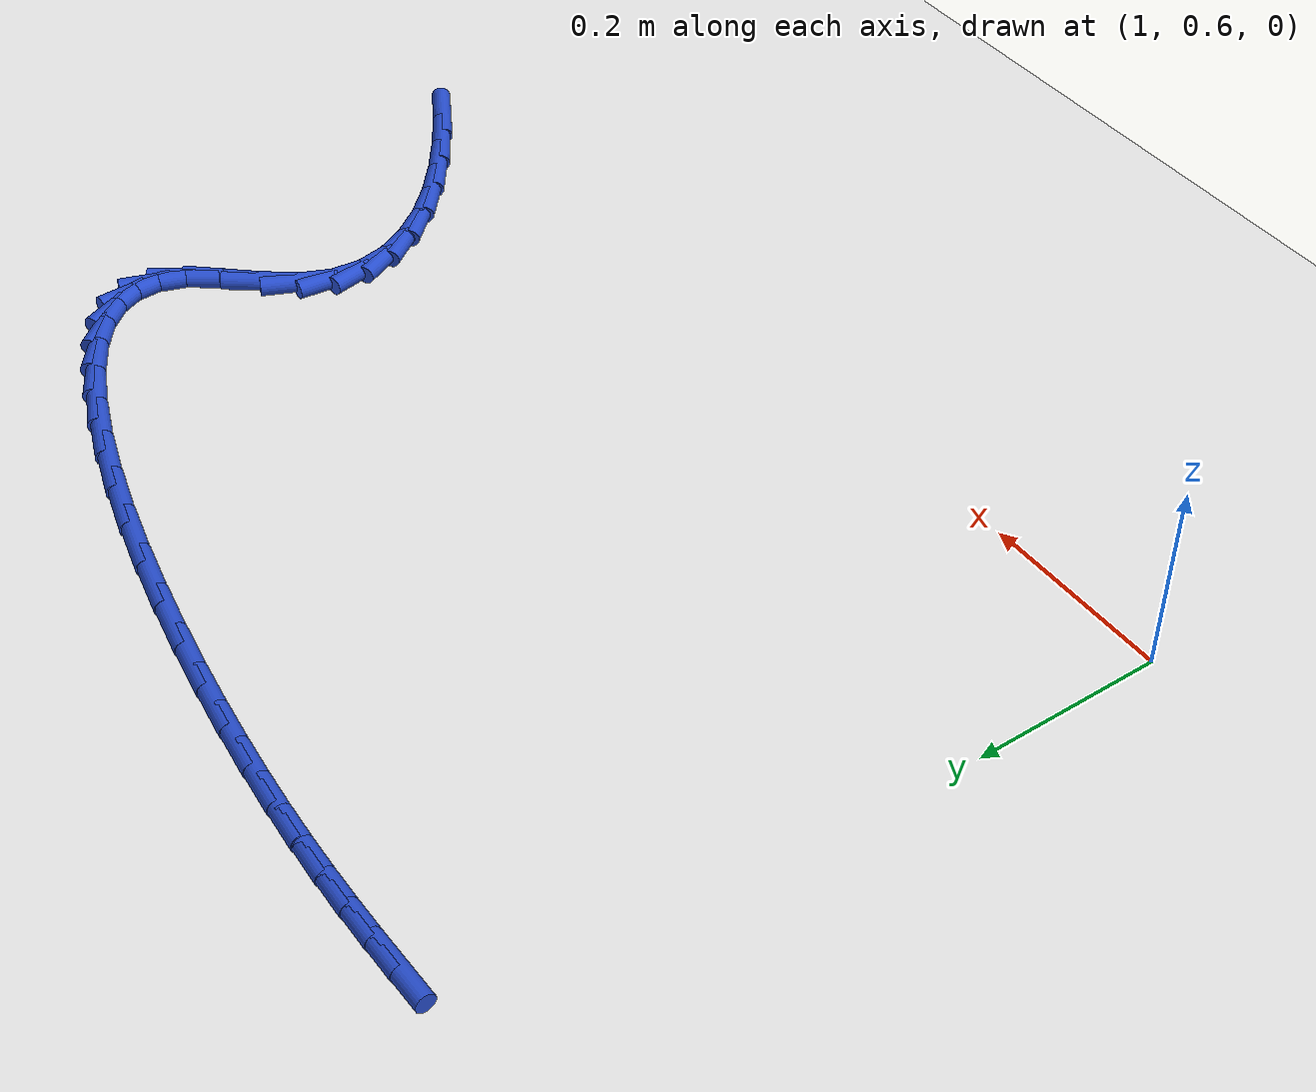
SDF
<sdf version="1.6">
 <world name="default">
  <model name="ground_plane">
   <static>1</static>
   <link name="link">
    <collision name="collision">
     <geometry><plane><normal>0 0 1</normal><size>100 100</size></plane></geometry>
     <surface><friction><ode><mu>100</mu><mu2>50</mu2></ode></friction></surface>
    </collision>
    <visual name="visual">
     <cast_shadows>0</cast_shadows>
     <geometry><plane><normal>0 0 1</normal><size>100 100</size></plane></geometry>
     <material>
      <script><uri>file://media/materials/scripts/gazebo.material</uri><name>Gazebo/WhiteGlow</name></script>
     </material>
    </visual>
   </link>
  </model>
  <model name="line">
   <link name="link_54">
    <pose>1.088029812200985 1.3249546010694535 0.01 0 1.57 0.009431579210391387</pose>
    <collision name="collision">
     <geometry><cylinder><radius>0.01</radius><length>0.08</length></cylinder></geometry>
    </collision>
    <visual name="visual">
     <material>
      <script><name>Gazebo/Blue</name><uri>file://media/materials/scripts/gazebo.material</uri></script>
     </material>
     <geometry><cylinder><radius>0.01</radius><length>0.08</length></cylinder></geometry>
    </visual>
   </link>
   <link name="link_55">
    <pose>1.1241681047701428 1.3252954523451805 0.01 0 1.57 -0.00444309195493434</pose>
    <collision name="collision">
     <geometry><cylinder><radius>0.01</radius><length>0.08</length></cylinder></geometry>
    </collision>
    <visual name="visual">
     <material>
      <script><name>Gazebo/Blue</name><uri>file://media/materials/scripts/gazebo.material</uri></script>
     </material>
     <geometry><cylinder><radius>0.01</radius><length>0.08</length></cylinder></geometry>
    </visual>
   </link>
   <link name="link_56">
    <pose>1.1609926185099289 1.3251318365677875 0.01 0 1.57 -0.02135259291994002</pose>
    <collision name="collision">
     <geometry><cylinder><radius>0.01</radius><length>0.08</length></cylinder></geometry>
    </collision>
    <visual name="visual">
     <material>
      <script><name>Gazebo/Blue</name><uri>file://media/materials/scripts/gazebo.material</uri></script>
     </material>
     <geometry><cylinder><radius>0.01</radius><length>0.08</length></cylinder></geometry>
    </visual>
   </link>
   <link name="link_57">
    <pose>1.1989363323020936 1.324321516738992 0.01 0 1.57 -0.04046971935433926</pose>
    <collision name="collision">
     <geometry><cylinder><radius>0.01</radius><length>0.08</length></cylinder></geometry>
    </collision>
    <visual name="visual">
     <material>
      <script><name>Gazebo/Blue</name><uri>file://media/materials/scripts/gazebo.material</uri></script>
     </material>
     <geometry><cylinder><radius>0.01</radius><length>0.08</length></cylinder></geometry>
    </visual>
   </link>
   <link name="link_58">
    <pose>1.2384322250283883 1.3227222558605107 0.01 0 1.57 -0.06092678608826884</pose>
    <collision name="collision">
     <geometry><cylinder><radius>0.01</radius><length>0.08</length></cylinder></geometry>
    </collision>
    <visual name="visual">
     <material>
      <script><name>Gazebo/Blue</name><uri>file://media/materials/scripts/gazebo.material</uri></script>
     </material>
     <geometry><cylinder><radius>0.01</radius><length>0.08</length></cylinder></geometry>
    </visual>
   </link>
   <link name="link_59">
    <pose>1.2799132755705658 1.3201918169340614 0.01 0 1.57 -0.08191018645160461</pose>
    <collision name="collision">
     <geometry><cylinder><radius>0.01</radius><length>0.08</length></cylinder></geometry>
    </collision>
    <visual name="visual">
     <material>
      <script><name>Gazebo/Blue</name><uri>file://media/materials/scripts/gazebo.material</uri></script>
     </material>
     <geometry><cylinder><radius>0.01</radius><length>0.08</length></cylinder></geometry>
    </visual>
   </link>
   <link name="link_60">
    <pose>1.3238124628103765 1.3165879629613617 0.01 0 1.57 -0.10272747933632816</pose>
    <collision name="collision">
     <geometry><cylinder><radius>0.01</radius><length>0.08</length></cylinder></geometry>
    </collision>
    <visual name="visual">
     <material>
      <script><name>Gazebo/Blue</name><uri>file://media/materials/scripts/gazebo.material</uri></script>
     </material>
     <geometry><cylinder><radius>0.01</radius><length>0.08</length></cylinder></geometry>
    </visual>
   </link>
   <link name="link_61">
    <pose>1.3705627656295716 1.3117684569441284 0.01 0 1.57 -0.12289369342704996</pose>
    <collision name="collision">
     <geometry><cylinder><radius>0.01</radius><length>0.08</length></cylinder></geometry>
    </collision>
    <visual name="visual">
     <material>
      <script><name>Gazebo/Blue</name><uri>file://media/materials/scripts/gazebo.material</uri></script>
     </material>
     <geometry><cylinder><radius>0.01</radius><length>0.08</length></cylinder></geometry>
    </visual>
   </link>
   <link name="link_62">
    <pose>1.4204952045015808 1.305600995031575 0.01 0 1.57 -0.14285486224246896</pose>
    <collision name="collision">
     <geometry><cylinder><radius>0.01</radius><length>0.08</length></cylinder></geometry>
    </collision>
    <visual name="visual">
     <material>
      <script><name>Gazebo/Blue</name><uri>file://media/materials/scripts/gazebo.material</uri></script>
     </material>
     <geometry><cylinder><radius>0.01</radius><length>0.08</length></cylinder></geometry>
    </visual>
   </link>
   <link name="link_63">
    <pose>1.473087429432464 1.2980364117315932 0.01 0 1.57 -0.1636919185847594</pose>
    <collision name="collision">
     <geometry><cylinder><radius>0.01</radius><length>0.08</length></cylinder></geometry>
    </collision>
    <visual name="visual">
     <material>
      <script><name>Gazebo/Blue</name><uri>file://media/materials/scripts/gazebo.material</uri></script>
     </material>
     <geometry><cylinder><radius>0.01</radius><length>0.08</length></cylinder></geometry>
    </visual>
   </link>
   <link name="link_64">
    <pose>1.5273917203938736 1.289066982600064 0.01 0 1.57 -0.18634617327038</pose>
    <collision name="collision">
     <geometry><cylinder><radius>0.01</radius><length>0.08</length></cylinder></geometry>
    </collision>
    <visual name="visual">
     <material>
      <script><name>Gazebo/Blue</name><uri>file://media/materials/scripts/gazebo.material</uri></script>
     </material>
     <geometry><cylinder><radius>0.01</radius><length>0.08</length></cylinder></geometry>
    </visual>
   </link>
   <link name="link_65">
    <pose>1.5824572396208434 1.2786852869337584 0.01 0 1.57 -0.21182949814616803</pose>
    <collision name="collision">
     <geometry><cylinder><radius>0.01</radius><length>0.08</length></cylinder></geometry>
    </collision>
    <visual name="visual">
     <material>
      <script><name>Gazebo/Blue</name><uri>file://media/materials/scripts/gazebo.material</uri></script>
     </material>
     <geometry><cylinder><radius>0.01</radius><length>0.08</length></cylinder></geometry>
    </visual>
   </link>
   <link name="link_66">
    <pose>1.6373331493484085 1.2668839040294477 0.01 0 1.57 -0.24137830240991728</pose>
    <collision name="collision">
     <geometry><cylinder><radius>0.01</radius><length>0.08</length></cylinder></geometry>
    </collision>
    <visual name="visual">
     <material>
      <script><name>Gazebo/Blue</name><uri>file://media/materials/scripts/gazebo.material</uri></script>
     </material>
     <geometry><cylinder><radius>0.01</radius><length>0.08</length></cylinder></geometry>
    </visual>
   </link>
   <link name="link_67">
    <pose>1.691068611811601 1.2536554131839028 0.01 0 1.57 -0.27664367276878027</pose>
    <collision name="collision">
     <geometry><cylinder><radius>0.01</radius><length>0.08</length></cylinder></geometry>
    </collision>
    <visual name="visual">
     <material>
      <script><name>Gazebo/Blue</name><uri>file://media/materials/scripts/gazebo.material</uri></script>
     </material>
     <geometry><cylinder><radius>0.01</radius><length>0.08</length></cylinder></geometry>
    </visual>
   </link>
   <link name="link_68">
    <pose>1.7427127892454557 1.2389923936938954 0.01 0 1.57 -0.3199770640843167</pose>
    <collision name="collision">
     <geometry><cylinder><radius>0.01</radius><length>0.08</length></cylinder></geometry>
    </collision>
    <visual name="visual">
     <material>
      <script><name>Gazebo/Blue</name><uri>file://media/materials/scripts/gazebo.material</uri></script>
     </material>
     <geometry><cylinder><radius>0.01</radius><length>0.08</length></cylinder></geometry>
    </visual>
   </link>
   <link name="link_69">
    <pose>1.7913148438850073 1.222887424856196 0.01 0 1.57 -0.3749032187285134</pose>
    <collision name="collision">
     <geometry><cylinder><radius>0.01</radius><length>0.08</length></cylinder></geometry>
    </collision>
    <visual name="visual">
     <material>
      <script><name>Gazebo/Blue</name><uri>file://media/materials/scripts/gazebo.material</uri></script>
     </material>
     <geometry><cylinder><radius>0.01</radius><length>0.08</length></cylinder></geometry>
    </visual>
   </link>
   <link name="link_70">
    <pose>1.8359239379652887 1.2053330859675768 0.01 0 1.57 -0.44694174297669936</pose>
    <collision name="collision">
     <geometry><cylinder><radius>0.01</radius><length>0.08</length></cylinder></geometry>
    </collision>
    <visual name="visual">
     <material>
      <script><name>Gazebo/Blue</name><uri>file://media/materials/scripts/gazebo.material</uri></script>
     </material>
     <geometry><cylinder><radius>0.01</radius><length>0.08</length></cylinder></geometry>
    </visual>
   </link>
   <link name="link_71">
    <pose>1.875589233721334 1.1863219563248077 0.01 0 1.57 -0.5450430978455487</pose>
    <collision name="collision">
     <geometry><cylinder><radius>0.01</radius><length>0.08</length></cylinder></geometry>
    </collision>
    <visual name="visual">
     <material>
      <script><name>Gazebo/Blue</name><uri>file://media/materials/scripts/gazebo.material</uri></script>
     </material>
     <geometry><cylinder><radius>0.01</radius><length>0.08</length></cylinder></geometry>
    </visual>
   </link>
   <link name="link_72">
    <pose>1.9093598933881775 1.165846615224661 0.01 0 1.57 -0.6838863555935412</pose>
    <collision name="collision">
     <geometry><cylinder><radius>0.01</radius><length>0.08</length></cylinder></geometry>
    </collision>
    <visual name="visual">
     <material>
      <script><name>Gazebo/Blue</name><uri>file://media/materials/scripts/gazebo.material</uri></script>
     </material>
     <geometry><cylinder><radius>0.01</radius><length>0.08</length></cylinder></geometry>
    </visual>
   </link>
   <link name="link_73">
    <pose>1.936285079200853 1.1438996419639065 0.01 0 1.57 -0.8860360437319956</pose>
    <collision name="collision">
     <geometry><cylinder><radius>0.01</radius><length>0.08</length></cylinder></geometry>
    </collision>
    <visual name="visual">
     <material>
      <script><name>Gazebo/Blue</name><uri>file://media/materials/scripts/gazebo.material</uri></script>
     </material>
     <geometry><cylinder><radius>0.01</radius><length>0.08</length></cylinder></geometry>
    </visual>
   </link>
   <link name="link_74">
    <pose>1.9554139533943935 1.1204736158393165 0.01 0 1.57 -1.1759533364727794</pose>
    <collision name="collision">
     <geometry><cylinder><radius>0.01</radius><length>0.08</length></cylinder></geometry>
    </collision>
    <visual name="visual">
     <material>
      <script><name>Gazebo/Blue</name><uri>file://media/materials/scripts/gazebo.material</uri></script>
     </material>
     <geometry><cylinder><radius>0.01</radius><length>0.08</length></cylinder></geometry>
    </visual>
   </link>
   <link name="link_75">
    <pose>1.965795678203834 1.095561116147662 0.01 0 1.57 -1.5449092283598778</pose>
    <collision name="collision">
     <geometry><cylinder><radius>0.01</radius><length>0.08</length></cylinder></geometry>
    </collision>
    <visual name="visual">
     <material>
      <script><name>Gazebo/Blue</name><uri>file://media/materials/scripts/gazebo.material</uri></script>
     </material>
     <geometry><cylinder><radius>0.01</radius><length>0.08</length></cylinder></geometry>
    </visual>
   </link>
   <link name="link_76">
    <pose>1.9664794158642085 1.0691547221857136 0.01 0 1.57 1.2278344092049145</pose>
    <collision name="collision">
     <geometry><cylinder><radius>0.01</radius><length>0.08</length></cylinder></geometry>
    </collision>
    <visual name="visual">
     <material>
      <script><name>Gazebo/Blue</name><uri>file://media/materials/scripts/gazebo.material</uri></script>
     </material>
     <geometry><cylinder><radius>0.01</radius><length>0.08</length></cylinder></geometry>
    </visual>
   </link>
   <link name="link_77">
    <pose>1.95651432861055 1.041247013250243 0.01 0 1.57 0.9502899250231212</pose>
    <collision name="collision">
     <geometry><cylinder><radius>0.01</radius><length>0.08</length></cylinder></geometry>
    </collision>
    <visual name="visual">
     <material>
      <script><name>Gazebo/Blue</name><uri>file://media/materials/scripts/gazebo.material</uri></script>
     </material>
     <geometry><cylinder><radius>0.01</radius><length>0.08</length></cylinder></geometry>
    </visual>
   </link>
   <link name="link_78">
    <pose>1.9355043125382656 1.011848962507012 0.01 0 1.57 0.8511975685985421</pose>
    <collision name="collision">
     <geometry><cylinder><radius>0.01</radius><length>0.08</length></cylinder></geometry>
    </collision>
    <visual name="visual">
     <material>
      <script><name>Gazebo/Blue</name><uri>file://media/materials/scripts/gazebo.material</uri></script>
     </material>
     <geometry><cylinder><radius>0.01</radius><length>0.08</length></cylinder></geometry>
    </visual>
   </link>
   <link name="link_79">
    <pose>1.9086059837846232 0.9811556602494501 0.01 0 1.57 0.9139746695128509</pose>
    <collision name="collision">
     <geometry><cylinder><radius>0.01</radius><length>0.08</length></cylinder></geometry>
    </collision>
    <visual name="visual">
     <material>
      <script><name>Gazebo/Blue</name><uri>file://media/materials/scripts/gazebo.material</uri></script>
     </material>
     <geometry><cylinder><radius>0.01</radius><length>0.08</length></cylinder></geometry>
    </visual>
   </link>
   <link name="link_80">
    <pose>1.8841742051025014 0.9494682442533017 0.01 0 1.57 1.1466263398061394</pose>
    <collision name="collision">
     <geometry><cylinder><radius>0.01</radius><length>0.08</length></cylinder></geometry>
    </collision>
    <visual name="visual">
     <material>
      <script><name>Gazebo/Blue</name><uri>file://media/materials/scripts/gazebo.material</uri></script>
     </material>
     <geometry><cylinder><radius>0.01</radius><length>0.08</length></cylinder></geometry>
    </visual>
   </link>
   <link name="link_81">
    <pose>1.8695509192238031 0.9170860030562503 0.01 0 1.57 1.4595622401637622</pose>
    <collision name="collision">
     <geometry><cylinder><radius>0.01</radius><length>0.08</length></cylinder></geometry>
    </collision>
    <visual name="visual">
     <material>
      <script><name>Gazebo/Blue</name><uri>file://media/materials/scripts/gazebo.material</uri></script>
     </material>
     <geometry><cylinder><radius>0.01</radius><length>0.08</length></cylinder></geometry>
    </visual>
   </link>
   <link name="link_82">
    <pose>1.8658877467040926 0.8842898343473893 0.01 0 1.57 -1.3850073067057933</pose>
    <collision name="collision">
     <geometry><cylinder><radius>0.01</radius><length>0.08</length></cylinder></geometry>
    </collision>
    <visual name="visual">
     <material>
      <script><name>Gazebo/Blue</name><uri>file://media/materials/scripts/gazebo.material</uri></script>
     </material>
     <geometry><cylinder><radius>0.01</radius><length>0.08</length></cylinder></geometry>
    </visual>
   </link>
   <link name="link_83">
    <pose>1.8720782682617794 0.8513539273978084 0.01 0 1.57 -1.1435438504343636</pose>
    <collision name="collision">
     <geometry><cylinder><radius>0.01</radius><length>0.08</length></cylinder></geometry>
    </collision>
    <visual name="visual">
     <material>
      <script><name>Gazebo/Blue</name><uri>file://media/materials/scripts/gazebo.material</uri></script>
     </material>
     <geometry><cylinder><radius>0.01</radius><length>0.08</length></cylinder></geometry>
    </visual>
   </link>
   <link name="link_84">
    <pose>1.8870127684147942 0.8185524616859025 0.01 0 1.57 -0.9622746765811078</pose>
    <collision name="collision">
     <geometry><cylinder><radius>0.01</radius><length>0.08</length></cylinder></geometry>
    </collision>
    <visual name="visual">
     <material>
      <script><name>Gazebo/Blue</name><uri>file://media/materials/scripts/gazebo.material</uri></script>
     </material>
     <geometry><cylinder><radius>0.01</radius><length>0.08</length></cylinder></geometry>
    </visual>
   </link>
   <link name="link_85">
    <pose>1.909581531681066 0.7861596166900661 0.01 0 1.57 -0.8284076352254928</pose>
    <collision name="collision">
     <geometry><cylinder><radius>0.01</radius><length>0.08</length></cylinder></geometry>
    </collision>
    <visual name="visual">
     <material>
      <script><name>Gazebo/Blue</name><uri>file://media/materials/scripts/gazebo.material</uri></script>
     </material>
     <geometry><cylinder><radius>0.01</radius><length>0.08</length></cylinder></geometry>
    </visual>
   </link>
   <link name="link_86">
    <pose>1.938674842578526 0.754449571888696 0.01 0 1.57 -0.7279223338546248</pose>
    <collision name="collision">
     <geometry><cylinder><radius>0.01</radius><length>0.08</length></cylinder></geometry>
    </collision>
    <visual name="visual">
     <material>
      <script><name>Gazebo/Blue</name><uri>file://media/materials/scripts/gazebo.material</uri></script>
     </material>
     <geometry><cylinder><radius>0.01</radius><length>0.08</length></cylinder></geometry>
    </visual>
   </link>
   <link name="link_87">
    <pose>1.9731829856251049 0.7236965067601874 0.01 0 1.57 -0.6502594882590538</pose>
    <collision name="collision">
     <geometry><cylinder><radius>0.01</radius><length>0.08</length></cylinder></geometry>
    </collision>
    <visual name="visual">
     <material>
      <script><name>Gazebo/Blue</name><uri>file://media/materials/scripts/gazebo.material</uri></script>
     </material>
     <geometry><cylinder><radius>0.01</radius><length>0.08</length></cylinder></geometry>
    </visual>
   </link>
   <link name="link_88">
    <pose>2.011996245338733 0.6941746007829346 0.01 0 1.57 -0.5881804592117672</pose>
    <collision name="collision">
     <geometry><cylinder><radius>0.01</radius><length>0.08</length></cylinder></geometry>
    </collision>
    <visual name="visual">
     <material>
      <script><name>Gazebo/Blue</name><uri>file://media/materials/scripts/gazebo.material</uri></script>
     </material>
     <geometry><cylinder><radius>0.01</radius><length>0.08</length></cylinder></geometry>
    </visual>
   </link>
   <link name="link_89">
    <pose>2.054004906237339 0.6661580334353343 0.01 0 1.57 -0.536750210512644</pose>
    <collision name="collision">
     <geometry><cylinder><radius>0.01</radius><length>0.08</length></cylinder></geometry>
    </collision>
    <visual name="visual">
     <material>
      <script><name>Gazebo/Blue</name><uri>file://media/materials/scripts/gazebo.material</uri></script>
     </material>
     <geometry><cylinder><radius>0.01</radius><length>0.08</length></cylinder></geometry>
    </visual>
   </link>
  </model>
 </world>
</sdf>
